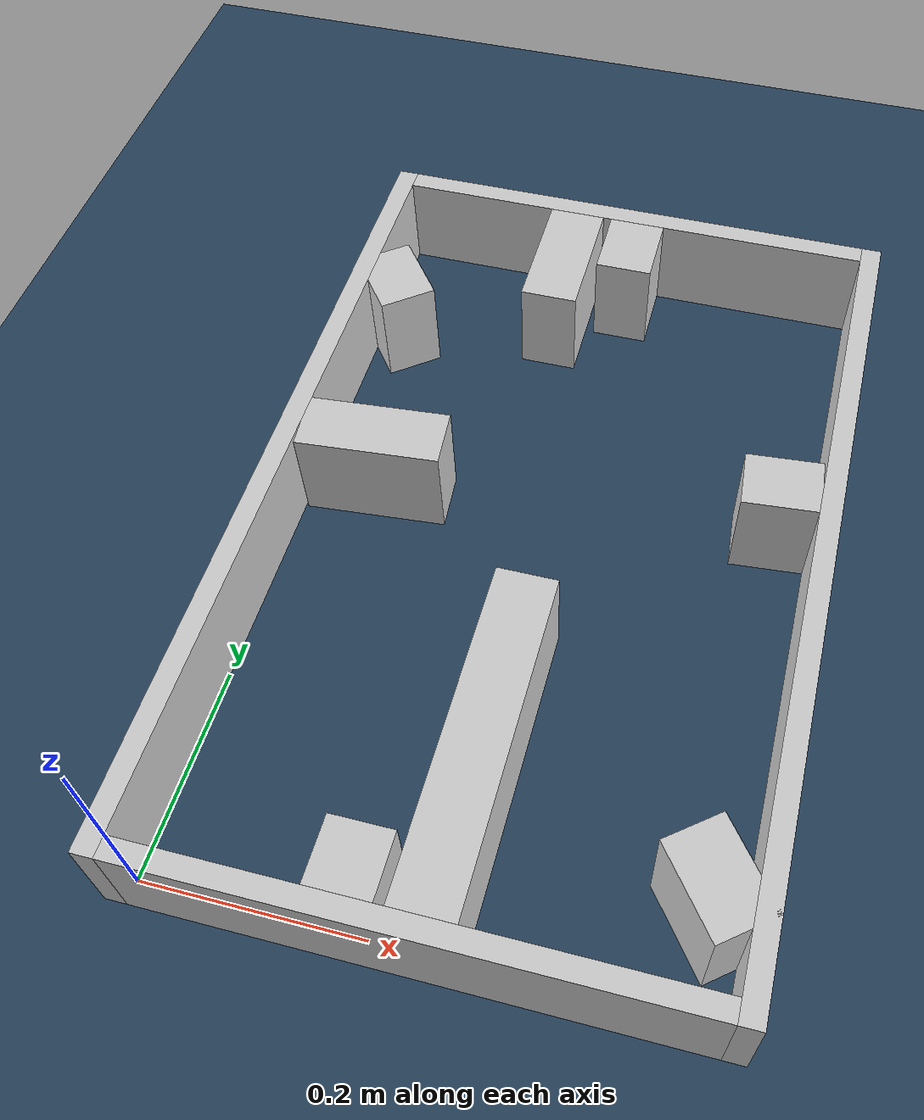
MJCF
<?xml version="1.0" ?>
<mujoco model="generated_real_template">
  <compiler angle="degree"/>
  <option timestep="0.002" integrator="implicitfast" iterations="100" cone="elliptic"/>
  <default>
    <geom density="1"/>
  </default>
  <asset>
    <texture builtin="gradient" height="3072" rgb1="0.3 0.5 0.7" rgb2="0 0 0" type="skybox" width="512"/>
    <texture builtin="checker" height="300" mark="edge" markrgb="0.8 0.8 0.8" name="groundplane" rgb1="0.2 0.3 0.4" rgb2="0.1 0.2 0.3" type="2d" width="300"/>
    <material name="groundplane" reflectance="0.2" texrepeat="5 5" texture="groundplane" texuniform="true"/>
  </asset>
  <worldbody>
    <light dir="0 0 -1" directional="true" pos="0 0 1.5"/>
    <geom name="floor" type="plane" condim="4" friction="0.5 0.005 0.001" material="groundplane" size="0 0 0.05"/>
    <body name="walls">
      <geom name="wall_boundary_left" type="box" condim="4" friction="1.0 0.005 0.0001" rgba="0.8 0.8 0.8 1" pos="-0.010000 0.387500 0.050000" euler="0 0 0.000000" size="0.010000 0.407500 0.050000"/>
      <geom name="wall_boundary_right" type="box" condim="4" friction="1.0 0.005 0.0001" rgba="0.8 0.8 0.8 1" pos="0.500000 0.387500 0.050000" euler="0 0 0.000000" size="0.010000 0.407500 0.050000"/>
      <geom name="wall_boundary_bottom" type="box" condim="4" friction="1.0 0.005 0.0001" rgba="0.8 0.8 0.8 1" pos="0.245000 -0.010000 0.050000" euler="0 0 0.000000" size="0.245000 0.010000 0.050000"/>
      <geom name="wall_boundary_top" type="box" condim="4" friction="1.0 0.005 0.0001" rgba="0.8 0.8 0.8 1" pos="0.245000 0.785000 0.050000" euler="0 0 0.000000" size="0.245000 0.010000 0.050000"/>
      <geom name="wall_inner_1_1" type="box" condim="4" friction="1.0 0.005 0.0001" rgba="0.8 0.8 0.8 1" pos="0.068919 0.432782 0.050000" euler="0 0 4.701941" size="0.069152 0.028500 0.050000"/>
      <geom name="wall_inner_1_2" type="box" condim="4" friction="1.0 0.005 0.0001" rgba="0.8 0.8 0.8 1" pos="0.453455 0.464410 0.050000" euler="0 0 4.701941" size="0.036669 0.028500 0.050000"/>
      <geom name="wall_inner_2_1" type="box" condim="4" friction="1.0 0.005 0.0001" rgba="0.8 0.8 0.8 1" pos="0.186696 0.029257 0.050000" euler="0 0 90.000000" size="0.029257 0.028500 0.050000"/>
      <geom name="wall_inner_2_2" type="box" condim="4" friction="1.0 0.005 0.0001" rgba="0.8 0.8 0.8 1" pos="0.186696 0.709649 0.050000" euler="0 0 90.000000" size="0.065351 0.028500 0.050000"/>
      <geom name="wall_inner_3_1" type="box" condim="4" friction="1.0 0.005 0.0001" rgba="0.8 0.8 0.8 1" pos="0.460253 0.083166 0.050000" euler="0 0 128.197715" size="0.044226 0.028500 0.050000"/>
      <geom name="wall_inner_3_2" type="box" condim="4" friction="1.0 0.005 0.0001" rgba="0.8 0.8 0.8 1" pos="0.025466 0.635727 0.050000" euler="0 0 128.197715" size="0.037304 0.028500 0.050000"/>
      <geom name="wall_inner_4_1" type="box" condim="4" friction="1.0 0.005 0.0001" rgba="0.8 0.8 0.8 1" pos="0.252300 0.155037 0.050000" euler="0 0 90.000000" size="0.155037 0.028500 0.050000"/>
      <geom name="wall_inner_4_2" type="box" condim="4" friction="1.0 0.005 0.0001" rgba="0.8 0.8 0.8 1" pos="0.252300 0.738857 0.050000" euler="0 0 90.000000" size="0.036143 0.028500 0.050000"/>
    </body>
  </worldbody>
</mujoco>
